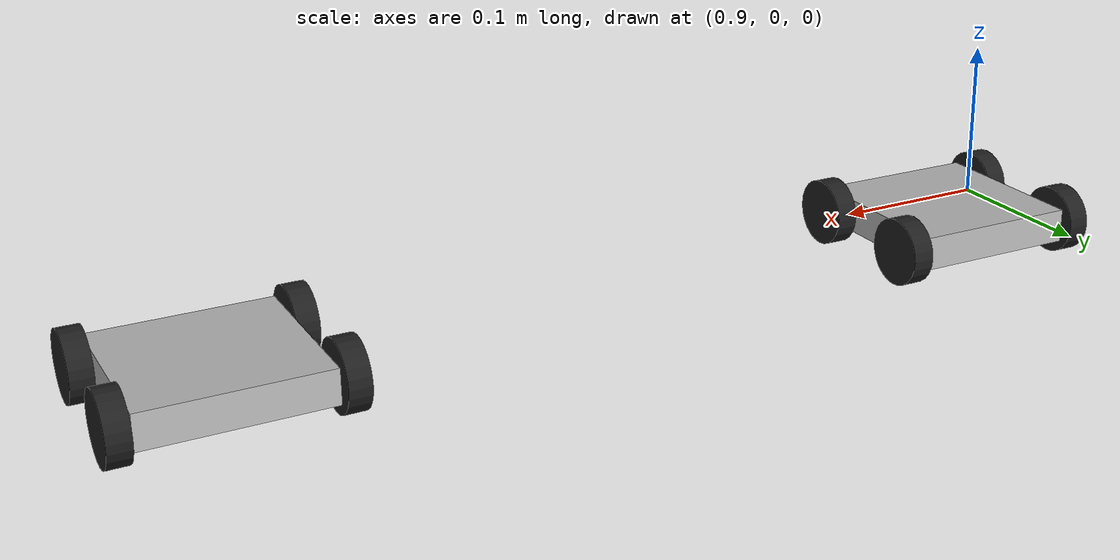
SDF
<sdf version="1.7">
 <world name="grid3">
  <model name="myrobot1">
   <link name="chassis1">
    <inertial>
     <pose>0 0 0.1 0 -0 0</pose>
     <mass>10</mass>
     <inertia><ixx>0.5</ixx><ixy>0</ixy><ixz>0</ixz><iyy>1</iyy><iyz>0</iyz><izz>0.1</izz></inertia>
    </inertial>
    <collision name="chassis1_fixed_joint_lump__collision_collision">
     <geometry><box><size>0.1016 0.1016 0.02</size></box></geometry>
    </collision>
    <visual name="chassis1_visual_visual">
     <geometry><box><size>0.1016 0.1016 0.02</size></box></geometry>
     <material>
      <script><name>robot1/Image</name><uri>file://media/materials/scripts/gazebo.material</uri></script>
     </material>
    </visual>
   </link>
   <joint name="left_back_wheel_hinge" type="revolute">
    <pose relative_to="chassis1">-0.0381 0.0584 0 0 -0 0</pose>
    <parent>chassis1</parent>
    <child>left_back_wheel</child>
    <axis>
     <xyz>0 1 0</xyz>
     <limit><lower>-1e+16</lower><upper>1e+16</upper></limit>
     <dynamics><spring_reference>0</spring_reference><spring_stiffness>0</spring_stiffness></dynamics>
    </axis>
   </joint>
   <link name="left_back_wheel">
    <pose relative_to="left_back_wheel_hinge">0 0 0 0 -0 0</pose>
    <inertial>
     <pose>0 0 0 -0 1.5707 1.5707</pose>
     <mass>10</mass>
     <inertia><ixx>1</ixx><ixy>0</ixy><ixz>0</ixz><iyy>1</iyy><iyz>0</iyz><izz>1</izz></inertia>
    </inertial>
    <collision name="left_back_wheel_fixed_joint_lump__collision_collision">
     <pose>0 0 0 1.57089 1.57079 -3.14159</pose>
     <geometry><cylinder><length>0.0127</length><radius>0.02</radius></cylinder></geometry>
    </collision>
    <visual name="left_back_wheel_visual_visual">
     <pose>0 0 0 1.57089 1.57079 -3.14159</pose>
     <geometry><cylinder><length>0.0127</length><radius>0.02</radius></cylinder></geometry>
     <material>
      <script><name>Gazebo/Black</name><uri>file://media/materials/scripts/gazebo.material</uri></script>
     </material>
    </visual>
   </link>
   <joint name="left_front_wheel_hinge" type="revolute">
    <pose relative_to="chassis1">0.0381 0.0584 0 0 -0 0</pose>
    <parent>chassis1</parent>
    <child>left_front_wheel</child>
    <axis>
     <xyz>0 1 0</xyz>
     <limit><lower>-1e+16</lower><upper>1e+16</upper></limit>
     <dynamics><spring_reference>0</spring_reference><spring_stiffness>0</spring_stiffness></dynamics>
    </axis>
   </joint>
   <link name="left_front_wheel">
    <pose relative_to="left_front_wheel_hinge">0 0 0 0 -0 0</pose>
    <inertial>
     <pose>0 0 0 -0 1.5707 1.5707</pose>
     <mass>10</mass>
     <inertia><ixx>1</ixx><ixy>0</ixy><ixz>0</ixz><iyy>1</iyy><iyz>0</iyz><izz>1</izz></inertia>
    </inertial>
    <collision name="left_front_wheel_fixed_joint_lump__collision_collision">
     <pose>0 0 0 1.57089 1.57079 -3.14159</pose>
     <geometry><cylinder><length>0.0127</length><radius>0.02</radius></cylinder></geometry>
    </collision>
    <visual name="left_front_wheel_visual_visual">
     <pose>0 0 0 1.57089 1.57079 -3.14159</pose>
     <geometry><cylinder><length>0.0127</length><radius>0.02</radius></cylinder></geometry>
     <material>
      <script><name>Gazebo/Black</name><uri>file://media/materials/scripts/gazebo.material</uri></script>
     </material>
    </visual>
   </link>
   <joint name="right_back_wheel_hinge" type="revolute">
    <pose relative_to="chassis1">-0.0381 -0.0584 0 0 -0 0</pose>
    <parent>chassis1</parent>
    <child>right_back_wheel</child>
    <axis>
     <xyz>0 1 0</xyz>
     <limit><lower>-1e+16</lower><upper>1e+16</upper></limit>
     <dynamics><spring_reference>0</spring_reference><spring_stiffness>0</spring_stiffness></dynamics>
    </axis>
   </joint>
   <link name="right_back_wheel">
    <pose relative_to="right_back_wheel_hinge">0 0 0 0 -0 0</pose>
    <inertial>
     <pose>0 0 0 -0 1.5707 1.5707</pose>
     <mass>10</mass>
     <inertia><ixx>1</ixx><ixy>0</ixy><ixz>0</ixz><iyy>1</iyy><iyz>0</iyz><izz>1</izz></inertia>
    </inertial>
    <collision name="right_back_wheel_fixed_joint_lump__collision_collision">
     <pose>0 0 0 1.57089 1.57079 -3.14159</pose>
     <geometry><cylinder><length>0.0127</length><radius>0.02</radius></cylinder></geometry>
    </collision>
    <visual name="right_back_wheel_visual_visual">
     <pose>0 0 0 1.57089 1.57079 -3.14159</pose>
     <geometry><cylinder><length>0.0127</length><radius>0.02</radius></cylinder></geometry>
     <material>
      <script><name>Gazebo/Black</name><uri>file://media/materials/scripts/gazebo.material</uri></script>
     </material>
    </visual>
   </link>
   <joint name="right_front_wheel_hinge" type="revolute">
    <pose relative_to="chassis1">0.0381 -0.0584 0 0 -0 0</pose>
    <parent>chassis1</parent>
    <child>right_front_wheel</child>
    <axis>
     <xyz>0 1 0</xyz>
     <limit><lower>-1e+16</lower><upper>1e+16</upper></limit>
     <dynamics><spring_reference>0</spring_reference><spring_stiffness>0</spring_stiffness></dynamics>
    </axis>
   </joint>
   <link name="right_front_wheel">
    <pose relative_to="right_front_wheel_hinge">0 0 0 0 -0 0</pose>
    <inertial>
     <pose>0 0 0 -0 1.5707 1.5707</pose>
     <mass>10</mass>
     <inertia><ixx>1</ixx><ixy>0</ixy><ixz>0</ixz><iyy>1</iyy><iyz>0</iyz><izz>1</izz></inertia>
    </inertial>
    <collision name="right_front_wheel_fixed_joint_lump__collision_collision">
     <pose>0 0 0 1.57089 1.57079 -3.14159</pose>
     <geometry><cylinder><length>0.0127</length><radius>0.02</radius></cylinder></geometry>
    </collision>
    <visual name="right_front_wheel_visual_visual">
     <pose>0 0 0 1.57089 1.57079 -3.14159</pose>
     <geometry><cylinder><length>0.0127</length><radius>0.02</radius></cylinder></geometry>
     <material>
      <script><name>Gazebo/Black</name><uri>file://media/materials/scripts/gazebo.material</uri></script>
     </material>
    </visual>
   </link>
   <static>0</static>
   <plugin name="differential_drive_controller" filename="libgazebo_ros_diff_drive.so">
    <legacyMode>0</legacyMode>
    <alwaysOn>1</alwaysOn>
    <updateRate>20</updateRate>
    <leftJoint>left_back_wheel_hinge</leftJoint>
    <rightJoint>right_back_wheel_hinge</rightJoint>
    <wheelSeparation>0.1608</wheelSeparation>
    <wheelDiameter>0.1</wheelDiameter>
    <wheelTorque>5</wheelTorque>
    <commandTopic>robot1/cmd_vel</commandTopic>
    <odometryTopic>robot1/odom</odometryTopic>
    <odometryFrame>grid/odom</odometryFrame>
    <robotBaseFrame>chassis1</robotBaseFrame>
    <robotNamespace>/</robotNamespace>
   </plugin>
   <pose>0.988759 0.080376 0.025 -1e-06 -8e-06 1.56111</pose>
  </model>
  <model name="myrobot4">
   <link name="chassis4">
    <inertial>
     <pose>0 0 0.1 0 -0 0</pose>
     <mass>10</mass>
     <inertia><ixx>0.5</ixx><ixy>0</ixy><ixz>0</ixz><iyy>1</iyy><iyz>0</iyz><izz>0.1</izz></inertia>
    </inertial>
    <collision name="chassis4_fixed_joint_lump__collision_collision">
     <geometry><box><size>0.1016 0.1016 0.02</size></box></geometry>
    </collision>
    <visual name="chassis4_visual_visual">
     <geometry><box><size>0.1016 0.1016 0.02</size></box></geometry>
     <material>
      <script><name>robot4/Image</name><uri>file://media/materials/scripts/gazebo.material</uri></script>
     </material>
    </visual>
   </link>
   <joint name="left_back_wheel_hinge" type="revolute">
    <pose relative_to="chassis4">-0.0381 0.0584 0 0 -0 0</pose>
    <parent>chassis4</parent>
    <child>left_back_wheel</child>
    <axis>
     <xyz>0 1 0</xyz>
     <limit><lower>-1e+16</lower><upper>1e+16</upper></limit>
     <dynamics><spring_reference>0</spring_reference><spring_stiffness>0</spring_stiffness></dynamics>
    </axis>
   </joint>
   <link name="left_back_wheel">
    <pose relative_to="left_back_wheel_hinge">0 0 0 0 -0 0</pose>
    <inertial>
     <pose>0 0 0 -0 1.5707 1.5707</pose>
     <mass>5</mass>
     <inertia><ixx>1</ixx><ixy>0</ixy><ixz>0</ixz><iyy>1</iyy><iyz>0</iyz><izz>1</izz></inertia>
    </inertial>
    <collision name="left_back_wheel_fixed_joint_lump__collision_collision">
     <pose>0 0 0 1.57089 1.57079 -3.14159</pose>
     <geometry><cylinder><length>0.0127</length><radius>0.02</radius></cylinder></geometry>
    </collision>
    <visual name="left_back_wheel_visual_visual">
     <pose>0 0 0 1.57089 1.57079 -3.14159</pose>
     <geometry><cylinder><length>0.0127</length><radius>0.02</radius></cylinder></geometry>
     <material>
      <script><name>Gazebo/Black</name><uri>file://media/materials/scripts/gazebo.material</uri></script>
     </material>
    </visual>
   </link>
   <joint name="left_front_wheel_hinge" type="revolute">
    <pose relative_to="chassis4">0.0381 0.0584 0 0 -0 0</pose>
    <parent>chassis4</parent>
    <child>left_front_wheel</child>
    <axis>
     <xyz>0 1 0</xyz>
     <limit><lower>-1e+16</lower><upper>1e+16</upper></limit>
     <dynamics><spring_reference>0</spring_reference><spring_stiffness>0</spring_stiffness></dynamics>
    </axis>
   </joint>
   <link name="left_front_wheel">
    <pose relative_to="left_front_wheel_hinge">0 0 0 0 -0 0</pose>
    <inertial>
     <pose>0 0 0 -0 1.5707 1.5707</pose>
     <mass>5</mass>
     <inertia><ixx>1</ixx><ixy>0</ixy><ixz>0</ixz><iyy>1</iyy><iyz>0</iyz><izz>1</izz></inertia>
    </inertial>
    <collision name="left_front_wheel_fixed_joint_lump__collision_collision">
     <pose>0 0 0 1.57089 1.57079 -3.14159</pose>
     <geometry><cylinder><length>0.0127</length><radius>0.02</radius></cylinder></geometry>
    </collision>
    <visual name="left_front_wheel_visual_visual">
     <pose>0 0 0 1.57089 1.57079 -3.14159</pose>
     <geometry><cylinder><length>0.0127</length><radius>0.02</radius></cylinder></geometry>
     <material>
      <script><name>Gazebo/Black</name><uri>file://media/materials/scripts/gazebo.material</uri></script>
     </material>
    </visual>
   </link>
   <joint name="right_back_wheel_hinge" type="revolute">
    <pose relative_to="chassis4">-0.0381 -0.0584 0 0 -0 0</pose>
    <parent>chassis4</parent>
    <child>right_back_wheel</child>
    <axis>
     <xyz>0 1 0</xyz>
     <limit><lower>-1e+16</lower><upper>1e+16</upper></limit>
     <dynamics><spring_reference>0</spring_reference><spring_stiffness>0</spring_stiffness></dynamics>
    </axis>
   </joint>
   <link name="right_back_wheel">
    <pose relative_to="right_back_wheel_hinge">0 0 0 0 -0 0</pose>
    <inertial>
     <pose>0 0 0 -0 1.5707 1.5707</pose>
     <mass>5</mass>
     <inertia><ixx>1</ixx><ixy>0</ixy><ixz>0</ixz><iyy>1</iyy><iyz>0</iyz><izz>1</izz></inertia>
    </inertial>
    <collision name="right_back_wheel_fixed_joint_lump__collision_collision">
     <pose>0 0 0 1.57089 1.57079 -3.14159</pose>
     <geometry><cylinder><length>0.0127</length><radius>0.02</radius></cylinder></geometry>
    </collision>
    <visual name="right_back_wheel_visual_visual">
     <pose>0 0 0 1.57089 1.57079 -3.14159</pose>
     <geometry><cylinder><length>0.0127</length><radius>0.02</radius></cylinder></geometry>
     <material>
      <script><name>Gazebo/Black</name><uri>file://media/materials/scripts/gazebo.material</uri></script>
     </material>
    </visual>
   </link>
   <joint name="right_front_wheel_hinge" type="revolute">
    <pose relative_to="chassis4">0.0381 -0.0584 0 0 -0 0</pose>
    <parent>chassis4</parent>
    <child>right_front_wheel</child>
    <axis>
     <xyz>0 1 0</xyz>
     <limit><lower>-1e+16</lower><upper>1e+16</upper></limit>
     <dynamics><spring_reference>0</spring_reference><spring_stiffness>0</spring_stiffness></dynamics>
    </axis>
   </joint>
   <link name="right_front_wheel">
    <pose relative_to="right_front_wheel_hinge">0 0 0 0 -0 0</pose>
    <inertial>
     <pose>0 0 0 -0 1.5707 1.5707</pose>
     <mass>5</mass>
     <inertia><ixx>1</ixx><ixy>0</ixy><ixz>0</ixz><iyy>1</iyy><iyz>0</iyz><izz>1</izz></inertia>
    </inertial>
    <collision name="right_front_wheel_fixed_joint_lump__collision_collision">
     <pose>0 0 0 1.57089 1.57079 -3.14159</pose>
     <geometry><cylinder><length>0.0127</length><radius>0.02</radius></cylinder></geometry>
    </collision>
    <visual name="right_front_wheel_visual_visual">
     <pose>0 0 0 1.57089 1.57079 -3.14159</pose>
     <geometry><cylinder><length>0.0127</length><radius>0.02</radius></cylinder></geometry>
     <material>
      <script><name>Gazebo/Black</name><uri>file://media/materials/scripts/gazebo.material</uri></script>
     </material>
    </visual>
   </link>
   <static>0</static>
   <plugin name="differential_drive_controller" filename="libgazebo_ros_diff_drive.so">
    <legacyMode>0</legacyMode>
    <alwaysOn>1</alwaysOn>
    <updateRate>20</updateRate>
    <leftJoint>left_back_wheel_hinge</leftJoint>
    <rightJoint>right_back_wheel_hinge</rightJoint>
    <wheelSeparation>0.4</wheelSeparation>
    <wheelDiameter>0.1</wheelDiameter>
    <wheelTorque>5</wheelTorque>
    <commandTopic>robot4/cmd_vel</commandTopic>
    <odometryTopic>robot4/odom</odometryTopic>
    <odometryFrame>grid/odom</odometryFrame>
    <robotBaseFrame>chassis4</robotBaseFrame>
    <robotNamespace>/</robotNamespace>
   </plugin>
   <pose>1.44947 0.079078 0.025 1e-06 -4e-06 1.56822</pose>
  </model>
 </world>
</sdf>
